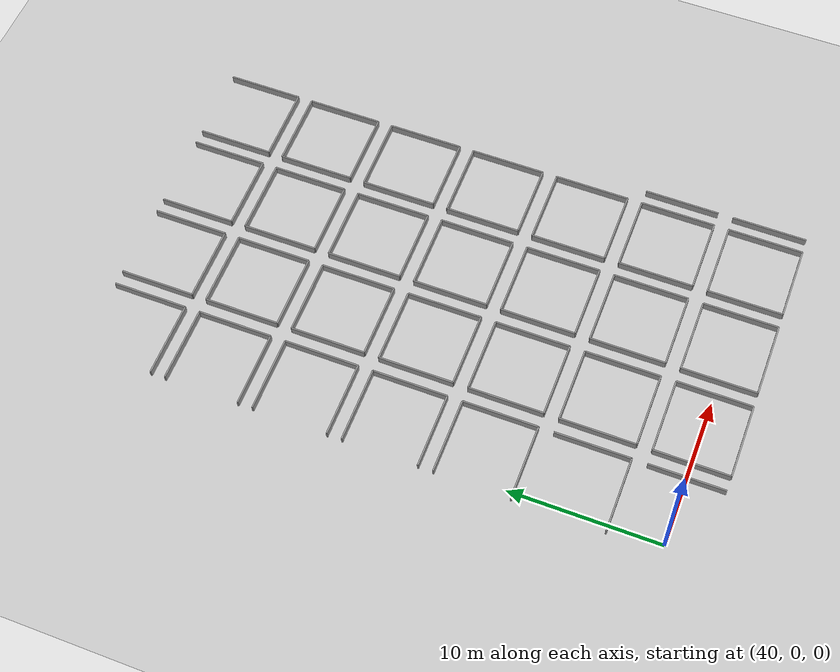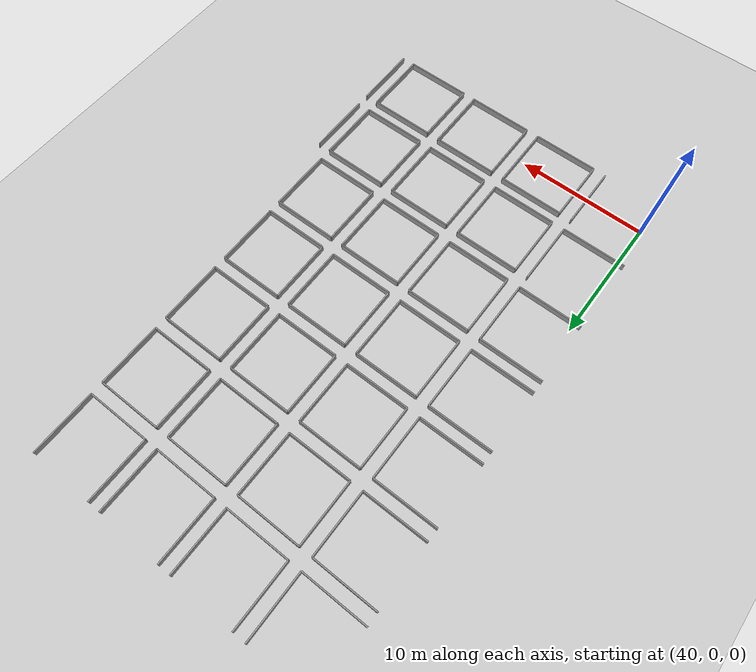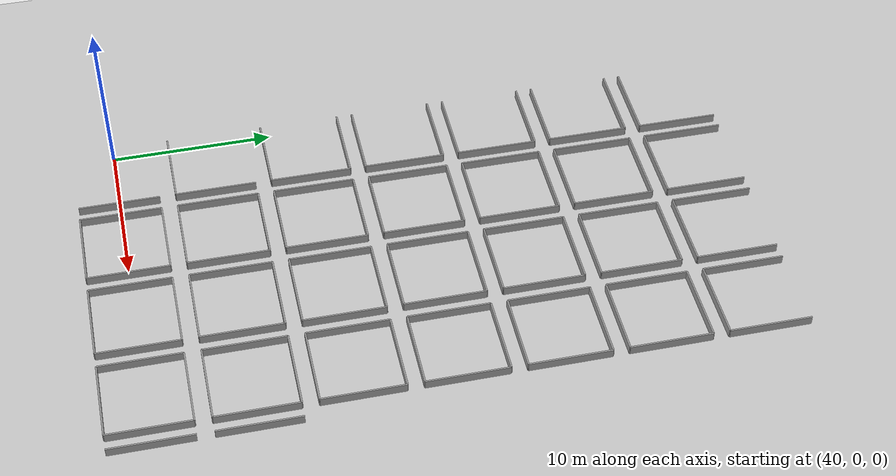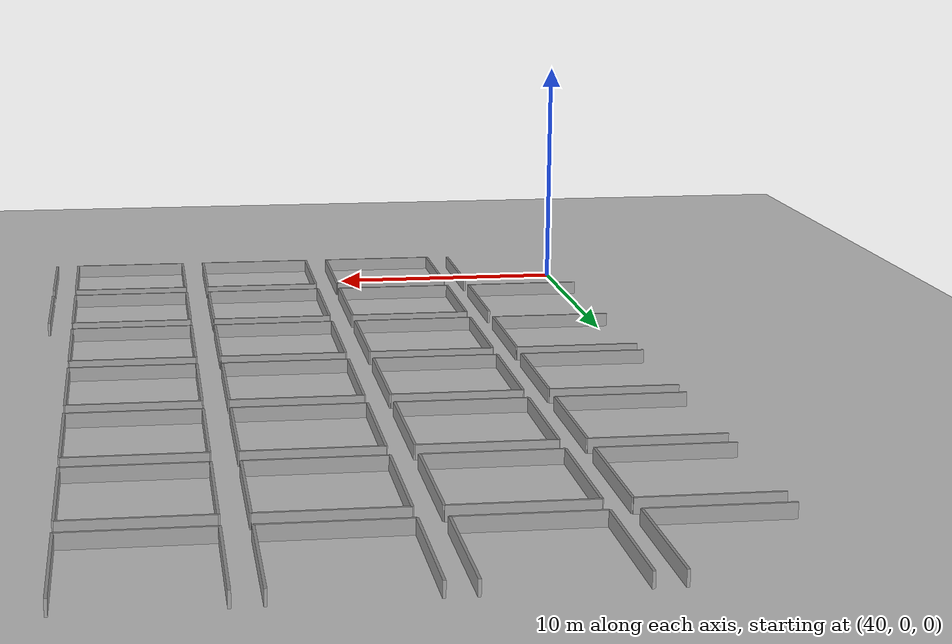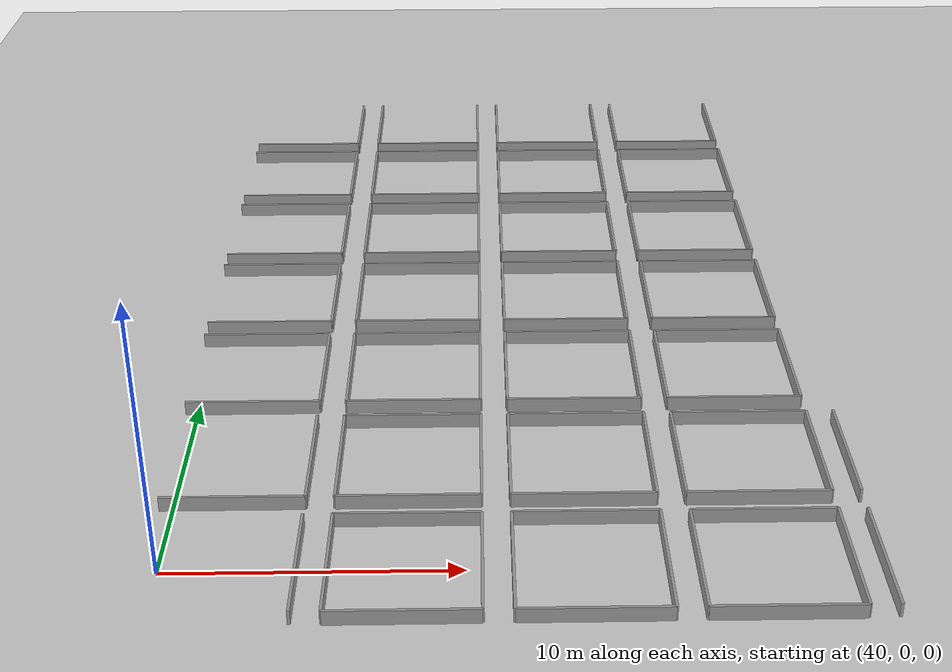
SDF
<sdf version="1.7">
 <world name="default">
  <include><uri>model://sun</uri></include>
  <model name="ground_plane">
   <static>true</static>
   <link name="link">
    <collision name="collision">
     <geometry><plane><normal>0 0 1</normal><size>100 100</size></plane></geometry>
    </collision>
    <visual name="visual">
     <geometry><plane><normal>0 0 1</normal><size>100 100</size></plane></geometry>
     <material>
      <script><uri>file://media/materials/scripts/gazebo.material</uri><name>Gazebo/Grey</name></script>
     </material>
    </visual>
   </link>
  </model>
  <model name="wall_7_east">
   <static>true</static>
   <pose>44.5 0 0 0 0 1.5707</pose>
   <link name="link">
    <collision name="collision"><geometry><box><size>5 0.1 1</size></box></geometry></collision>
    <visual name="visual">
     <geometry><box><size>5 0.1 1</size></box></geometry>
     <material>
      <script><uri>file://media/materials/scripts/gazebo.material</uri><name>Gazebo/Grey</name></script>
     </material>
    </visual>
   </link>
  </model>
  <model name="wall_8_north">
   <static>true</static>
   <pose>48 2.5 0 0 0 0</pose>
   <link name="link">
    <collision name="collision"><geometry><box><size>5 0.1 1</size></box></geometry></collision>
    <visual name="visual">
     <geometry><box><size>5 0.1 1</size></box></geometry>
     <material>
      <script><uri>file://media/materials/scripts/gazebo.material</uri><name>Gazebo/Grey</name></script>
     </material>
    </visual>
   </link>
  </model>
  <model name="wall_8_south">
   <static>true</static>
   <pose>48 -2.5 0 0 0 0</pose>
   <link name="link">
    <collision name="collision"><geometry><box><size>5 0.1 1</size></box></geometry></collision>
    <visual name="visual">
     <geometry><box><size>5 0.1 1</size></box></geometry>
     <material>
      <script><uri>file://media/materials/scripts/gazebo.material</uri><name>Gazebo/Grey</name></script>
     </material>
    </visual>
   </link>
  </model>
  <model name="wall_8_east">
   <static>true</static>
   <pose>50.5 0 0 0 0 1.5707</pose>
   <link name="link">
    <collision name="collision"><geometry><box><size>5 0.1 1</size></box></geometry></collision>
    <visual name="visual">
     <geometry><box><size>5 0.1 1</size></box></geometry>
     <material>
      <script><uri>file://media/materials/scripts/gazebo.material</uri><name>Gazebo/Grey</name></script>
     </material>
    </visual>
   </link>
  </model>
  <model name="wall_8_west">
   <static>true</static>
   <pose>45.5 0 0 0 0 1.5707</pose>
   <link name="link">
    <collision name="collision"><geometry><box><size>5 0.1 1</size></box></geometry></collision>
    <visual name="visual">
     <geometry><box><size>5 0.1 1</size></box></geometry>
     <material>
      <script><uri>file://media/materials/scripts/gazebo.material</uri><name>Gazebo/Grey</name></script>
     </material>
    </visual>
   </link>
  </model>
  <model name="wall_9_north">
   <static>true</static>
   <pose>54 2.5 0 0 0 0</pose>
   <link name="link">
    <collision name="collision"><geometry><box><size>5 0.1 1</size></box></geometry></collision>
    <visual name="visual">
     <geometry><box><size>5 0.1 1</size></box></geometry>
     <material>
      <script><uri>file://media/materials/scripts/gazebo.material</uri><name>Gazebo/Grey</name></script>
     </material>
    </visual>
   </link>
  </model>
  <model name="wall_9_south">
   <static>true</static>
   <pose>54 -2.5 0 0 0 0</pose>
   <link name="link">
    <collision name="collision"><geometry><box><size>5 0.1 1</size></box></geometry></collision>
    <visual name="visual">
     <geometry><box><size>5 0.1 1</size></box></geometry>
     <material>
      <script><uri>file://media/materials/scripts/gazebo.material</uri><name>Gazebo/Grey</name></script>
     </material>
    </visual>
   </link>
  </model>
  <model name="wall_9_east">
   <static>true</static>
   <pose>56.5 0 0 0 0 1.5707</pose>
   <link name="link">
    <collision name="collision"><geometry><box><size>5 0.1 1</size></box></geometry></collision>
    <visual name="visual">
     <geometry><box><size>5 0.1 1</size></box></geometry>
     <material>
      <script><uri>file://media/materials/scripts/gazebo.material</uri><name>Gazebo/Grey</name></script>
     </material>
    </visual>
   </link>
  </model>
  <model name="wall_9_west">
   <static>true</static>
   <pose>51.5 0 0 0 0 1.5707</pose>
   <link name="link">
    <collision name="collision"><geometry><box><size>5 0.1 1</size></box></geometry></collision>
    <visual name="visual">
     <geometry><box><size>5 0.1 1</size></box></geometry>
     <material>
      <script><uri>file://media/materials/scripts/gazebo.material</uri><name>Gazebo/Grey</name></script>
     </material>
    </visual>
   </link>
  </model>
  <model name="wall_10_north">
   <static>true</static>
   <pose>60 2.5 0 0 0 0</pose>
   <link name="link">
    <collision name="collision"><geometry><box><size>5 0.1 1</size></box></geometry></collision>
    <visual name="visual">
     <geometry><box><size>5 0.1 1</size></box></geometry>
     <material>
      <script><uri>file://media/materials/scripts/gazebo.material</uri><name>Gazebo/Grey</name></script>
     </material>
    </visual>
   </link>
  </model>
  <model name="wall_10_south">
   <static>true</static>
   <pose>60 -2.5 0 0 0 0</pose>
   <link name="link">
    <collision name="collision"><geometry><box><size>5 0.1 1</size></box></geometry></collision>
    <visual name="visual">
     <geometry><box><size>5 0.1 1</size></box></geometry>
     <material>
      <script><uri>file://media/materials/scripts/gazebo.material</uri><name>Gazebo/Grey</name></script>
     </material>
    </visual>
   </link>
  </model>
  <model name="wall_10_east">
   <static>true</static>
   <pose>62.5 0 0 0 0 1.5707</pose>
   <link name="link">
    <collision name="collision"><geometry><box><size>5 0.1 1</size></box></geometry></collision>
    <visual name="visual">
     <geometry><box><size>5 0.1 1</size></box></geometry>
     <material>
      <script><uri>file://media/materials/scripts/gazebo.material</uri><name>Gazebo/Grey</name></script>
     </material>
    </visual>
   </link>
  </model>
  <model name="wall_10_west">
   <static>true</static>
   <pose>57.5 0 0 0 0 1.5707</pose>
   <link name="link">
    <collision name="collision"><geometry><box><size>5 0.1 1</size></box></geometry></collision>
    <visual name="visual">
     <geometry><box><size>5 0.1 1</size></box></geometry>
     <material>
      <script><uri>file://media/materials/scripts/gazebo.material</uri><name>Gazebo/Grey</name></script>
     </material>
    </visual>
   </link>
  </model>
  <model name="wall_11_west">
   <static>true</static>
   <pose>63.5 0 0 0 0 1.5707</pose>
   <link name="link">
    <collision name="collision"><geometry><box><size>5 0.1 1</size></box></geometry></collision>
    <visual name="visual">
     <geometry><box><size>5 0.1 1</size></box></geometry>
     <material>
      <script><uri>file://media/materials/scripts/gazebo.material</uri><name>Gazebo/Grey</name></script>
     </material>
    </visual>
   </link>
  </model>
  <model name="wall_22_south">
   <static>true</static>
   <pose>42 3.5 0 0 0 0</pose>
   <link name="link">
    <collision name="collision"><geometry><box><size>5 0.1 1</size></box></geometry></collision>
    <visual name="visual">
     <geometry><box><size>5 0.1 1</size></box></geometry>
     <material>
      <script><uri>file://media/materials/scripts/gazebo.material</uri><name>Gazebo/Grey</name></script>
     </material>
    </visual>
   </link>
  </model>
  <model name="wall_22_east">
   <static>true</static>
   <pose>44.5 6 0 0 0 1.5707</pose>
   <link name="link">
    <collision name="collision"><geometry><box><size>5 0.1 1</size></box></geometry></collision>
    <visual name="visual">
     <geometry><box><size>5 0.1 1</size></box></geometry>
     <material>
      <script><uri>file://media/materials/scripts/gazebo.material</uri><name>Gazebo/Grey</name></script>
     </material>
    </visual>
   </link>
  </model>
  <model name="wall_23_north">
   <static>true</static>
   <pose>48 8.5 0 0 0 0</pose>
   <link name="link">
    <collision name="collision"><geometry><box><size>5 0.1 1</size></box></geometry></collision>
    <visual name="visual">
     <geometry><box><size>5 0.1 1</size></box></geometry>
     <material>
      <script><uri>file://media/materials/scripts/gazebo.material</uri><name>Gazebo/Grey</name></script>
     </material>
    </visual>
   </link>
  </model>
  <model name="wall_23_south">
   <static>true</static>
   <pose>48 3.5 0 0 0 0</pose>
   <link name="link">
    <collision name="collision"><geometry><box><size>5 0.1 1</size></box></geometry></collision>
    <visual name="visual">
     <geometry><box><size>5 0.1 1</size></box></geometry>
     <material>
      <script><uri>file://media/materials/scripts/gazebo.material</uri><name>Gazebo/Grey</name></script>
     </material>
    </visual>
   </link>
  </model>
  <model name="wall_23_east">
   <static>true</static>
   <pose>50.5 6 0 0 0 1.5707</pose>
   <link name="link">
    <collision name="collision"><geometry><box><size>5 0.1 1</size></box></geometry></collision>
    <visual name="visual">
     <geometry><box><size>5 0.1 1</size></box></geometry>
     <material>
      <script><uri>file://media/materials/scripts/gazebo.material</uri><name>Gazebo/Grey</name></script>
     </material>
    </visual>
   </link>
  </model>
  <model name="wall_23_west">
   <static>true</static>
   <pose>45.5 6 0 0 0 1.5707</pose>
   <link name="link">
    <collision name="collision"><geometry><box><size>5 0.1 1</size></box></geometry></collision>
    <visual name="visual">
     <geometry><box><size>5 0.1 1</size></box></geometry>
     <material>
      <script><uri>file://media/materials/scripts/gazebo.material</uri><name>Gazebo/Grey</name></script>
     </material>
    </visual>
   </link>
  </model>
  <model name="wall_24_north">
   <static>true</static>
   <pose>54 8.5 0 0 0 0</pose>
   <link name="link">
    <collision name="collision"><geometry><box><size>5 0.1 1</size></box></geometry></collision>
    <visual name="visual">
     <geometry><box><size>5 0.1 1</size></box></geometry>
     <material>
      <script><uri>file://media/materials/scripts/gazebo.material</uri><name>Gazebo/Grey</name></script>
     </material>
    </visual>
   </link>
  </model>
  <model name="wall_24_south">
   <static>true</static>
   <pose>54 3.5 0 0 0 0</pose>
   <link name="link">
    <collision name="collision"><geometry><box><size>5 0.1 1</size></box></geometry></collision>
    <visual name="visual">
     <geometry><box><size>5 0.1 1</size></box></geometry>
     <material>
      <script><uri>file://media/materials/scripts/gazebo.material</uri><name>Gazebo/Grey</name></script>
     </material>
    </visual>
   </link>
  </model>
  <model name="wall_24_east">
   <static>true</static>
   <pose>56.5 6 0 0 0 1.5707</pose>
   <link name="link">
    <collision name="collision"><geometry><box><size>5 0.1 1</size></box></geometry></collision>
    <visual name="visual">
     <geometry><box><size>5 0.1 1</size></box></geometry>
     <material>
      <script><uri>file://media/materials/scripts/gazebo.material</uri><name>Gazebo/Grey</name></script>
     </material>
    </visual>
   </link>
  </model>
  <model name="wall_24_west">
   <static>true</static>
   <pose>51.5 6 0 0 0 1.5707</pose>
   <link name="link">
    <collision name="collision"><geometry><box><size>5 0.1 1</size></box></geometry></collision>
    <visual name="visual">
     <geometry><box><size>5 0.1 1</size></box></geometry>
     <material>
      <script><uri>file://media/materials/scripts/gazebo.material</uri><name>Gazebo/Grey</name></script>
     </material>
    </visual>
   </link>
  </model>
  <model name="wall_25_north">
   <static>true</static>
   <pose>60 8.5 0 0 0 0</pose>
   <link name="link">
    <collision name="collision"><geometry><box><size>5 0.1 1</size></box></geometry></collision>
    <visual name="visual">
     <geometry><box><size>5 0.1 1</size></box></geometry>
     <material>
      <script><uri>file://media/materials/scripts/gazebo.material</uri><name>Gazebo/Grey</name></script>
     </material>
    </visual>
   </link>
  </model>
  <model name="wall_25_south">
   <static>true</static>
   <pose>60 3.5 0 0 0 0</pose>
   <link name="link">
    <collision name="collision"><geometry><box><size>5 0.1 1</size></box></geometry></collision>
    <visual name="visual">
     <geometry><box><size>5 0.1 1</size></box></geometry>
     <material>
      <script><uri>file://media/materials/scripts/gazebo.material</uri><name>Gazebo/Grey</name></script>
     </material>
    </visual>
   </link>
  </model>
  <model name="wall_25_east">
   <static>true</static>
   <pose>62.5 6 0 0 0 1.5707</pose>
   <link name="link">
    <collision name="collision"><geometry><box><size>5 0.1 1</size></box></geometry></collision>
    <visual name="visual">
     <geometry><box><size>5 0.1 1</size></box></geometry>
     <material>
      <script><uri>file://media/materials/scripts/gazebo.material</uri><name>Gazebo/Grey</name></script>
     </material>
    </visual>
   </link>
  </model>
  <model name="wall_25_west">
   <static>true</static>
   <pose>57.5 6 0 0 0 1.5707</pose>
   <link name="link">
    <collision name="collision"><geometry><box><size>5 0.1 1</size></box></geometry></collision>
    <visual name="visual">
     <geometry><box><size>5 0.1 1</size></box></geometry>
     <material>
      <script><uri>file://media/materials/scripts/gazebo.material</uri><name>Gazebo/Grey</name></script>
     </material>
    </visual>
   </link>
  </model>
  <model name="wall_26_west">
   <static>true</static>
   <pose>63.5 6 0 0 0 1.5707</pose>
   <link name="link">
    <collision name="collision"><geometry><box><size>5 0.1 1</size></box></geometry></collision>
    <visual name="visual">
     <geometry><box><size>5 0.1 1</size></box></geometry>
     <material>
      <script><uri>file://media/materials/scripts/gazebo.material</uri><name>Gazebo/Grey</name></script>
     </material>
    </visual>
   </link>
  </model>
  <model name="wall_37_north">
   <static>true</static>
   <pose>42 14.5 0 0 0 0</pose>
   <link name="link">
    <collision name="collision"><geometry><box><size>5 0.1 1</size></box></geometry></collision>
    <visual name="visual">
     <geometry><box><size>5 0.1 1</size></box></geometry>
     <material>
      <script><uri>file://media/materials/scripts/gazebo.material</uri><name>Gazebo/Grey</name></script>
     </material>
    </visual>
   </link>
  </model>
  <model name="wall_37_south">
   <static>true</static>
   <pose>42 9.5 0 0 0 0</pose>
   <link name="link">
    <collision name="collision"><geometry><box><size>5 0.1 1</size></box></geometry></collision>
    <visual name="visual">
     <geometry><box><size>5 0.1 1</size></box></geometry>
     <material>
      <script><uri>file://media/materials/scripts/gazebo.material</uri><name>Gazebo/Grey</name></script>
     </material>
    </visual>
   </link>
  </model>
  <model name="wall_37_east">
   <static>true</static>
   <pose>44.5 12 0 0 0 1.5707</pose>
   <link name="link">
    <collision name="collision"><geometry><box><size>5 0.1 1</size></box></geometry></collision>
    <visual name="visual">
     <geometry><box><size>5 0.1 1</size></box></geometry>
     <material>
      <script><uri>file://media/materials/scripts/gazebo.material</uri><name>Gazebo/Grey</name></script>
     </material>
    </visual>
   </link>
  </model>
  <model name="wall_38_north">
   <static>true</static>
   <pose>48 14.5 0 0 0 0</pose>
   <link name="link">
    <collision name="collision"><geometry><box><size>5 0.1 1</size></box></geometry></collision>
    <visual name="visual">
     <geometry><box><size>5 0.1 1</size></box></geometry>
     <material>
      <script><uri>file://media/materials/scripts/gazebo.material</uri><name>Gazebo/Grey</name></script>
     </material>
    </visual>
   </link>
  </model>
  <model name="wall_38_south">
   <static>true</static>
   <pose>48 9.5 0 0 0 0</pose>
   <link name="link">
    <collision name="collision"><geometry><box><size>5 0.1 1</size></box></geometry></collision>
    <visual name="visual">
     <geometry><box><size>5 0.1 1</size></box></geometry>
     <material>
      <script><uri>file://media/materials/scripts/gazebo.material</uri><name>Gazebo/Grey</name></script>
     </material>
    </visual>
   </link>
  </model>
  <model name="wall_38_east">
   <static>true</static>
   <pose>50.5 12 0 0 0 1.5707</pose>
   <link name="link">
    <collision name="collision"><geometry><box><size>5 0.1 1</size></box></geometry></collision>
    <visual name="visual">
     <geometry><box><size>5 0.1 1</size></box></geometry>
     <material>
      <script><uri>file://media/materials/scripts/gazebo.material</uri><name>Gazebo/Grey</name></script>
     </material>
    </visual>
   </link>
  </model>
  <model name="wall_38_west">
   <static>true</static>
   <pose>45.5 12 0 0 0 1.5707</pose>
   <link name="link">
    <collision name="collision"><geometry><box><size>5 0.1 1</size></box></geometry></collision>
    <visual name="visual">
     <geometry><box><size>5 0.1 1</size></box></geometry>
     <material>
      <script><uri>file://media/materials/scripts/gazebo.material</uri><name>Gazebo/Grey</name></script>
     </material>
    </visual>
   </link>
  </model>
  <model name="wall_39_north">
   <static>true</static>
   <pose>54 14.5 0 0 0 0</pose>
   <link name="link">
    <collision name="collision"><geometry><box><size>5 0.1 1</size></box></geometry></collision>
    <visual name="visual">
     <geometry><box><size>5 0.1 1</size></box></geometry>
     <material>
      <script><uri>file://media/materials/scripts/gazebo.material</uri><name>Gazebo/Grey</name></script>
     </material>
    </visual>
   </link>
  </model>
  <model name="wall_39_south">
   <static>true</static>
   <pose>54 9.5 0 0 0 0</pose>
   <link name="link">
    <collision name="collision"><geometry><box><size>5 0.1 1</size></box></geometry></collision>
    <visual name="visual">
     <geometry><box><size>5 0.1 1</size></box></geometry>
     <material>
      <script><uri>file://media/materials/scripts/gazebo.material</uri><name>Gazebo/Grey</name></script>
     </material>
    </visual>
   </link>
  </model>
  <model name="wall_39_east">
   <static>true</static>
   <pose>56.5 12 0 0 0 1.5707</pose>
   <link name="link">
    <collision name="collision"><geometry><box><size>5 0.1 1</size></box></geometry></collision>
    <visual name="visual">
     <geometry><box><size>5 0.1 1</size></box></geometry>
     <material>
      <script><uri>file://media/materials/scripts/gazebo.material</uri><name>Gazebo/Grey</name></script>
     </material>
    </visual>
   </link>
  </model>
  <model name="wall_39_west">
   <static>true</static>
   <pose>51.5 12 0 0 0 1.5707</pose>
   <link name="link">
    <collision name="collision"><geometry><box><size>5 0.1 1</size></box></geometry></collision>
    <visual name="visual">
     <geometry><box><size>5 0.1 1</size></box></geometry>
     <material>
      <script><uri>file://media/materials/scripts/gazebo.material</uri><name>Gazebo/Grey</name></script>
     </material>
    </visual>
   </link>
  </model>
  <model name="wall_40_north">
   <static>true</static>
   <pose>60 14.5 0 0 0 0</pose>
   <link name="link">
    <collision name="collision"><geometry><box><size>5 0.1 1</size></box></geometry></collision>
    <visual name="visual">
     <geometry><box><size>5 0.1 1</size></box></geometry>
     <material>
      <script><uri>file://media/materials/scripts/gazebo.material</uri><name>Gazebo/Grey</name></script>
     </material>
    </visual>
   </link>
  </model>
  <model name="wall_40_south">
   <static>true</static>
   <pose>60 9.5 0 0 0 0</pose>
   <link name="link">
    <collision name="collision"><geometry><box><size>5 0.1 1</size></box></geometry></collision>
    <visual name="visual">
     <geometry><box><size>5 0.1 1</size></box></geometry>
     <material>
      <script><uri>file://media/materials/scripts/gazebo.material</uri><name>Gazebo/Grey</name></script>
     </material>
    </visual>
   </link>
  </model>
  <model name="wall_40_east">
   <static>true</static>
   <pose>62.5 12 0 0 0 1.5707</pose>
   <link name="link">
    <collision name="collision"><geometry><box><size>5 0.1 1</size></box></geometry></collision>
    <visual name="visual">
     <geometry><box><size>5 0.1 1</size></box></geometry>
     <material>
      <script><uri>file://media/materials/scripts/gazebo.material</uri><name>Gazebo/Grey</name></script>
     </material>
    </visual>
   </link>
  </model>
  <model name="wall_40_west">
   <static>true</static>
   <pose>57.5 12 0 0 0 1.5707</pose>
   <link name="link">
    <collision name="collision"><geometry><box><size>5 0.1 1</size></box></geometry></collision>
    <visual name="visual">
     <geometry><box><size>5 0.1 1</size></box></geometry>
     <material>
      <script><uri>file://media/materials/scripts/gazebo.material</uri><name>Gazebo/Grey</name></script>
     </material>
    </visual>
   </link>
  </model>
  <model name="wall_52_north">
   <static>true</static>
   <pose>42 20.5 0 0 0 0</pose>
   <link name="link">
    <collision name="collision"><geometry><box><size>5 0.1 1</size></box></geometry></collision>
    <visual name="visual">
     <geometry><box><size>5 0.1 1</size></box></geometry>
     <material>
      <script><uri>file://media/materials/scripts/gazebo.material</uri><name>Gazebo/Grey</name></script>
     </material>
    </visual>
   </link>
  </model>
  <model name="wall_52_south">
   <static>true</static>
   <pose>42 15.5 0 0 0 0</pose>
   <link name="link">
    <collision name="collision"><geometry><box><size>5 0.1 1</size></box></geometry></collision>
    <visual name="visual">
     <geometry><box><size>5 0.1 1</size></box></geometry>
     <material>
      <script><uri>file://media/materials/scripts/gazebo.material</uri><name>Gazebo/Grey</name></script>
     </material>
    </visual>
   </link>
  </model>
  <model name="wall_52_east">
   <static>true</static>
   <pose>44.5 18 0 0 0 1.5707</pose>
   <link name="link">
    <collision name="collision"><geometry><box><size>5 0.1 1</size></box></geometry></collision>
    <visual name="visual">
     <geometry><box><size>5 0.1 1</size></box></geometry>
     <material>
      <script><uri>file://media/materials/scripts/gazebo.material</uri><name>Gazebo/Grey</name></script>
     </material>
    </visual>
   </link>
  </model>
  <model name="wall_53_north">
   <static>true</static>
   <pose>48 20.5 0 0 0 0</pose>
   <link name="link">
    <collision name="collision"><geometry><box><size>5 0.1 1</size></box></geometry></collision>
    <visual name="visual">
     <geometry><box><size>5 0.1 1</size></box></geometry>
     <material>
      <script><uri>file://media/materials/scripts/gazebo.material</uri><name>Gazebo/Grey</name></script>
     </material>
    </visual>
   </link>
  </model>
  <model name="wall_53_south">
   <static>true</static>
   <pose>48 15.5 0 0 0 0</pose>
   <link name="link">
    <collision name="collision"><geometry><box><size>5 0.1 1</size></box></geometry></collision>
    <visual name="visual">
     <geometry><box><size>5 0.1 1</size></box></geometry>
     <material>
      <script><uri>file://media/materials/scripts/gazebo.material</uri><name>Gazebo/Grey</name></script>
     </material>
    </visual>
   </link>
  </model>
  <model name="wall_53_east">
   <static>true</static>
   <pose>50.5 18 0 0 0 1.5707</pose>
   <link name="link">
    <collision name="collision"><geometry><box><size>5 0.1 1</size></box></geometry></collision>
    <visual name="visual">
     <geometry><box><size>5 0.1 1</size></box></geometry>
     <material>
      <script><uri>file://media/materials/scripts/gazebo.material</uri><name>Gazebo/Grey</name></script>
     </material>
    </visual>
   </link>
  </model>
  <model name="wall_53_west">
   <static>true</static>
   <pose>45.5 18 0 0 0 1.5707</pose>
   <link name="link">
    <collision name="collision"><geometry><box><size>5 0.1 1</size></box></geometry></collision>
    <visual name="visual">
     <geometry><box><size>5 0.1 1</size></box></geometry>
     <material>
      <script><uri>file://media/materials/scripts/gazebo.material</uri><name>Gazebo/Grey</name></script>
     </material>
    </visual>
   </link>
  </model>
  <model name="wall_54_north">
   <static>true</static>
   <pose>54 20.5 0 0 0 0</pose>
   <link name="link">
    <collision name="collision"><geometry><box><size>5 0.1 1</size></box></geometry></collision>
    <visual name="visual">
     <geometry><box><size>5 0.1 1</size></box></geometry>
     <material>
      <script><uri>file://media/materials/scripts/gazebo.material</uri><name>Gazebo/Grey</name></script>
     </material>
    </visual>
   </link>
  </model>
  <model name="wall_54_south">
   <static>true</static>
   <pose>54 15.5 0 0 0 0</pose>
   <link name="link">
    <collision name="collision"><geometry><box><size>5 0.1 1</size></box></geometry></collision>
    <visual name="visual">
     <geometry><box><size>5 0.1 1</size></box></geometry>
     <material>
      <script><uri>file://media/materials/scripts/gazebo.material</uri><name>Gazebo/Grey</name></script>
     </material>
    </visual>
   </link>
  </model>
  <model name="wall_54_east">
   <static>true</static>
   <pose>56.5 18 0 0 0 1.5707</pose>
   <link name="link">
    <collision name="collision"><geometry><box><size>5 0.1 1</size></box></geometry></collision>
    <visual name="visual">
     <geometry><box><size>5 0.1 1</size></box></geometry>
     <material>
      <script><uri>file://media/materials/scripts/gazebo.material</uri><name>Gazebo/Grey</name></script>
     </material>
    </visual>
   </link>
  </model>
  <model name="wall_54_west">
   <static>true</static>
   <pose>51.5 18 0 0 0 1.5707</pose>
   <link name="link">
    <collision name="collision"><geometry><box><size>5 0.1 1</size></box></geometry></collision>
    <visual name="visual">
     <geometry><box><size>5 0.1 1</size></box></geometry>
     <material>
      <script><uri>file://media/materials/scripts/gazebo.material</uri><name>Gazebo/Grey</name></script>
     </material>
    </visual>
   </link>
  </model>
  <model name="wall_55_north">
   <static>true</static>
   <pose>60 20.5 0 0 0 0</pose>
   <link name="link">
    <collision name="collision"><geometry><box><size>5 0.1 1</size></box></geometry></collision>
    <visual name="visual">
     <geometry><box><size>5 0.1 1</size></box></geometry>
     <material>
      <script><uri>file://media/materials/scripts/gazebo.material</uri><name>Gazebo/Grey</name></script>
     </material>
    </visual>
   </link>
  </model>
  <model name="wall_55_south">
   <static>true</static>
   <pose>60 15.5 0 0 0 0</pose>
   <link name="link">
    <collision name="collision"><geometry><box><size>5 0.1 1</size></box></geometry></collision>
    <visual name="visual">
     <geometry><box><size>5 0.1 1</size></box></geometry>
     <material>
      <script><uri>file://media/materials/scripts/gazebo.material</uri><name>Gazebo/Grey</name></script>
     </material>
    </visual>
   </link>
  </model>
  <model name="wall_55_east">
   <static>true</static>
   <pose>62.5 18 0 0 0 1.5707</pose>
   <link name="link">
    <collision name="collision"><geometry><box><size>5 0.1 1</size></box></geometry></collision>
    <visual name="visual">
     <geometry><box><size>5 0.1 1</size></box></geometry>
     <material>
      <script><uri>file://media/materials/scripts/gazebo.material</uri><name>Gazebo/Grey</name></script>
     </material>
    </visual>
   </link>
  </model>
  <model name="wall_55_west">
   <static>true</static>
   <pose>57.5 18 0 0 0 1.5707</pose>
   <link name="link">
    <collision name="collision"><geometry><box><size>5 0.1 1</size></box></geometry></collision>
    <visual name="visual">
     <geometry><box><size>5 0.1 1</size></box></geometry>
     <material>
      <script><uri>file://media/materials/scripts/gazebo.material</uri><name>Gazebo/Grey</name></script>
     </material>
    </visual>
   </link>
  </model>
  <model name="wall_67_north">
   <static>true</static>
   <pose>42 26.5 0 0 0 0</pose>
   <link name="link">
    <collision name="collision"><geometry><box><size>5 0.1 1</size></box></geometry></collision>
    <visual name="visual">
     <geometry><box><size>5 0.1 1</size></box></geometry>
     <material>
      <script><uri>file://media/materials/scripts/gazebo.material</uri><name>Gazebo/Grey</name></script>
     </material>
    </visual>
   </link>
  </model>
  <model name="wall_67_south">
   <static>true</static>
   <pose>42 21.5 0 0 0 0</pose>
   <link name="link">
    <collision name="collision"><geometry><box><size>5 0.1 1</size></box></geometry></collision>
    <visual name="visual">
     <geometry><box><size>5 0.1 1</size></box></geometry>
     <material>
      <script><uri>file://media/materials/scripts/gazebo.material</uri><name>Gazebo/Grey</name></script>
     </material>
    </visual>
   </link>
  </model>
  <model name="wall_67_east">
   <static>true</static>
   <pose>44.5 24 0 0 0 1.5707</pose>
   <link name="link">
    <collision name="collision"><geometry><box><size>5 0.1 1</size></box></geometry></collision>
    <visual name="visual">
     <geometry><box><size>5 0.1 1</size></box></geometry>
     <material>
      <script><uri>file://media/materials/scripts/gazebo.material</uri><name>Gazebo/Grey</name></script>
     </material>
    </visual>
   </link>
  </model>
  <model name="wall_68_north">
   <static>true</static>
   <pose>48 26.5 0 0 0 0</pose>
   <link name="link">
    <collision name="collision"><geometry><box><size>5 0.1 1</size></box></geometry></collision>
    <visual name="visual">
     <geometry><box><size>5 0.1 1</size></box></geometry>
     <material>
      <script><uri>file://media/materials/scripts/gazebo.material</uri><name>Gazebo/Grey</name></script>
     </material>
    </visual>
   </link>
  </model>
  <model name="wall_68_south">
   <static>true</static>
   <pose>48 21.5 0 0 0 0</pose>
   <link name="link">
    <collision name="collision"><geometry><box><size>5 0.1 1</size></box></geometry></collision>
    <visual name="visual">
     <geometry><box><size>5 0.1 1</size></box></geometry>
     <material>
      <script><uri>file://media/materials/scripts/gazebo.material</uri><name>Gazebo/Grey</name></script>
     </material>
    </visual>
   </link>
  </model>
  <model name="wall_68_east">
   <static>true</static>
   <pose>50.5 24 0 0 0 1.5707</pose>
   <link name="link">
    <collision name="collision"><geometry><box><size>5 0.1 1</size></box></geometry></collision>
    <visual name="visual">
     <geometry><box><size>5 0.1 1</size></box></geometry>
     <material>
      <script><uri>file://media/materials/scripts/gazebo.material</uri><name>Gazebo/Grey</name></script>
     </material>
    </visual>
   </link>
  </model>
  <model name="wall_68_west">
   <static>true</static>
   <pose>45.5 24 0 0 0 1.5707</pose>
   <link name="link">
    <collision name="collision"><geometry><box><size>5 0.1 1</size></box></geometry></collision>
    <visual name="visual">
     <geometry><box><size>5 0.1 1</size></box></geometry>
     <material>
      <script><uri>file://media/materials/scripts/gazebo.material</uri><name>Gazebo/Grey</name></script>
     </material>
    </visual>
   </link>
  </model>
  <model name="wall_69_north">
   <static>true</static>
   <pose>54 26.5 0 0 0 0</pose>
   <link name="link">
    <collision name="collision"><geometry><box><size>5 0.1 1</size></box></geometry></collision>
    <visual name="visual">
     <geometry><box><size>5 0.1 1</size></box></geometry>
     <material>
      <script><uri>file://media/materials/scripts/gazebo.material</uri><name>Gazebo/Grey</name></script>
     </material>
    </visual>
   </link>
  </model>
  <model name="wall_69_south">
   <static>true</static>
   <pose>54 21.5 0 0 0 0</pose>
   <link name="link">
    <collision name="collision"><geometry><box><size>5 0.1 1</size></box></geometry></collision>
    <visual name="visual">
     <geometry><box><size>5 0.1 1</size></box></geometry>
     <material>
      <script><uri>file://media/materials/scripts/gazebo.material</uri><name>Gazebo/Grey</name></script>
     </material>
    </visual>
   </link>
  </model>
  <model name="wall_69_east">
   <static>true</static>
   <pose>56.5 24 0 0 0 1.5707</pose>
   <link name="link">
    <collision name="collision"><geometry><box><size>5 0.1 1</size></box></geometry></collision>
    <visual name="visual">
     <geometry><box><size>5 0.1 1</size></box></geometry>
     <material>
      <script><uri>file://media/materials/scripts/gazebo.material</uri><name>Gazebo/Grey</name></script>
     </material>
    </visual>
   </link>
  </model>
  <model name="wall_69_west">
   <static>true</static>
   <pose>51.5 24 0 0 0 1.5707</pose>
   <link name="link">
    <collision name="collision"><geometry><box><size>5 0.1 1</size></box></geometry></collision>
    <visual name="visual">
     <geometry><box><size>5 0.1 1</size></box></geometry>
     <material>
      <script><uri>file://media/materials/scripts/gazebo.material</uri><name>Gazebo/Grey</name></script>
     </material>
    </visual>
   </link>
  </model>
  <model name="wall_70_north">
   <static>true</static>
   <pose>60 26.5 0 0 0 0</pose>
   <link name="link">
    <collision name="collision"><geometry><box><size>5 0.1 1</size></box></geometry></collision>
    <visual name="visual">
     <geometry><box><size>5 0.1 1</size></box></geometry>
     <material>
      <script><uri>file://media/materials/scripts/gazebo.material</uri><name>Gazebo/Grey</name></script>
     </material>
    </visual>
   </link>
  </model>
  <model name="wall_70_south">
   <static>true</static>
   <pose>60 21.5 0 0 0 0</pose>
   <link name="link">
    <collision name="collision"><geometry><box><size>5 0.1 1</size></box></geometry></collision>
    <visual name="visual">
     <geometry><box><size>5 0.1 1</size></box></geometry>
     <material>
      <script><uri>file://media/materials/scripts/gazebo.material</uri><name>Gazebo/Grey</name></script>
     </material>
    </visual>
   </link>
  </model>
  <model name="wall_70_east">
   <static>true</static>
   <pose>62.5 24 0 0 0 1.5707</pose>
   <link name="link">
    <collision name="collision"><geometry><box><size>5 0.1 1</size></box></geometry></collision>
    <visual name="visual">
     <geometry><box><size>5 0.1 1</size></box></geometry>
     <material>
      <script><uri>file://media/materials/scripts/gazebo.material</uri><name>Gazebo/Grey</name></script>
     </material>
    </visual>
   </link>
  </model>
  <model name="wall_70_west">
   <static>true</static>
   <pose>57.5 24 0 0 0 1.5707</pose>
   <link name="link">
    <collision name="collision"><geometry><box><size>5 0.1 1</size></box></geometry></collision>
    <visual name="visual">
     <geometry><box><size>5 0.1 1</size></box></geometry>
     <material>
      <script><uri>file://media/materials/scripts/gazebo.material</uri><name>Gazebo/Grey</name></script>
     </material>
    </visual>
   </link>
  </model>
  <model name="wall_82_north">
   <static>true</static>
   <pose>42 32.5 0 0 0 0</pose>
   <link name="link">
    <collision name="collision"><geometry><box><size>5 0.1 1</size></box></geometry></collision>
    <visual name="visual">
     <geometry><box><size>5 0.1 1</size></box></geometry>
     <material>
      <script><uri>file://media/materials/scripts/gazebo.material</uri><name>Gazebo/Grey</name></script>
     </material>
    </visual>
   </link>
  </model>
  <model name="wall_82_south">
   <static>true</static>
   <pose>42 27.5 0 0 0 0</pose>
   <link name="link">
    <collision name="collision"><geometry><box><size>5 0.1 1</size></box></geometry></collision>
    <visual name="visual">
     <geometry><box><size>5 0.1 1</size></box></geometry>
     <material>
      <script><uri>file://media/materials/scripts/gazebo.material</uri><name>Gazebo/Grey</name></script>
     </material>
    </visual>
   </link>
  </model>
  <model name="wall_82_east">
   <static>true</static>
   <pose>44.5 30 0 0 0 1.5707</pose>
   <link name="link">
    <collision name="collision"><geometry><box><size>5 0.1 1</size></box></geometry></collision>
    <visual name="visual">
     <geometry><box><size>5 0.1 1</size></box></geometry>
     <material>
      <script><uri>file://media/materials/scripts/gazebo.material</uri><name>Gazebo/Grey</name></script>
     </material>
    </visual>
   </link>
  </model>
  <model name="wall_83_north">
   <static>true</static>
   <pose>48 32.5 0 0 0 0</pose>
   <link name="link">
    <collision name="collision"><geometry><box><size>5 0.1 1</size></box></geometry></collision>
    <visual name="visual">
     <geometry><box><size>5 0.1 1</size></box></geometry>
     <material>
      <script><uri>file://media/materials/scripts/gazebo.material</uri><name>Gazebo/Grey</name></script>
     </material>
    </visual>
   </link>
  </model>
  <model name="wall_83_south">
   <static>true</static>
   <pose>48 27.5 0 0 0 0</pose>
   <link name="link">
    <collision name="collision"><geometry><box><size>5 0.1 1</size></box></geometry></collision>
    <visual name="visual">
     <geometry><box><size>5 0.1 1</size></box></geometry>
     <material>
      <script><uri>file://media/materials/scripts/gazebo.material</uri><name>Gazebo/Grey</name></script>
     </material>
    </visual>
   </link>
  </model>
  <model name="wall_83_east">
   <static>true</static>
   <pose>50.5 30 0 0 0 1.5707</pose>
   <link name="link">
    <collision name="collision"><geometry><box><size>5 0.1 1</size></box></geometry></collision>
    <visual name="visual">
     <geometry><box><size>5 0.1 1</size></box></geometry>
     <material>
      <script><uri>file://media/materials/scripts/gazebo.material</uri><name>Gazebo/Grey</name></script>
     </material>
    </visual>
   </link>
  </model>
  <model name="wall_83_west">
   <static>true</static>
   <pose>45.5 30 0 0 0 1.5707</pose>
   <link name="link">
    <collision name="collision"><geometry><box><size>5 0.1 1</size></box></geometry></collision>
    <visual name="visual">
     <geometry><box><size>5 0.1 1</size></box></geometry>
     <material>
      <script><uri>file://media/materials/scripts/gazebo.material</uri><name>Gazebo/Grey</name></script>
     </material>
    </visual>
   </link>
  </model>
  <model name="wall_84_north">
   <static>true</static>
   <pose>54 32.5 0 0 0 0</pose>
   <link name="link">
    <collision name="collision"><geometry><box><size>5 0.1 1</size></box></geometry></collision>
    <visual name="visual">
     <geometry><box><size>5 0.1 1</size></box></geometry>
     <material>
      <script><uri>file://media/materials/scripts/gazebo.material</uri><name>Gazebo/Grey</name></script>
     </material>
    </visual>
   </link>
  </model>
  <model name="wall_84_south">
   <static>true</static>
   <pose>54 27.5 0 0 0 0</pose>
   <link name="link">
    <collision name="collision"><geometry><box><size>5 0.1 1</size></box></geometry></collision>
    <visual name="visual">
     <geometry><box><size>5 0.1 1</size></box></geometry>
     <material>
      <script><uri>file://media/materials/scripts/gazebo.material</uri><name>Gazebo/Grey</name></script>
     </material>
    </visual>
   </link>
  </model>
  <model name="wall_84_east">
   <static>true</static>
   <pose>56.5 30 0 0 0 1.5707</pose>
   <link name="link">
    <collision name="collision"><geometry><box><size>5 0.1 1</size></box></geometry></collision>
    <visual name="visual">
     <geometry><box><size>5 0.1 1</size></box></geometry>
     <material>
      <script><uri>file://media/materials/scripts/gazebo.material</uri><name>Gazebo/Grey</name></script>
     </material>
    </visual>
   </link>
  </model>
  <model name="wall_84_west">
   <static>true</static>
   <pose>51.5 30 0 0 0 1.5707</pose>
   <link name="link">
    <collision name="collision"><geometry><box><size>5 0.1 1</size></box></geometry></collision>
    <visual name="visual">
     <geometry><box><size>5 0.1 1</size></box></geometry>
     <material>
      <script><uri>file://media/materials/scripts/gazebo.material</uri><name>Gazebo/Grey</name></script>
     </material>
    </visual>
   </link>
  </model>
  <model name="wall_85_north">
   <static>true</static>
   <pose>60 32.5 0 0 0 0</pose>
   <link name="link">
    <collision name="collision"><geometry><box><size>5 0.1 1</size></box></geometry></collision>
    <visual name="visual">
     <geometry><box><size>5 0.1 1</size></box></geometry>
     <material>
      <script><uri>file://media/materials/scripts/gazebo.material</uri><name>Gazebo/Grey</name></script>
     </material>
    </visual>
   </link>
  </model>
  <model name="wall_85_south">
   <static>true</static>
   <pose>60 27.5 0 0 0 0</pose>
   <link name="link">
    <collision name="collision"><geometry><box><size>5 0.1 1</size></box></geometry></collision>
    <visual name="visual">
     <geometry><box><size>5 0.1 1</size></box></geometry>
     <material>
      <script><uri>file://media/materials/scripts/gazebo.material</uri><name>Gazebo/Grey</name></script>
     </material>
    </visual>
   </link>
  </model>
  <model name="wall_85_east">
   <static>true</static>
   <pose>62.5 30 0 0 0 1.5707</pose>
   <link name="link">
    <collision name="collision"><geometry><box><size>5 0.1 1</size></box></geometry></collision>
    <visual name="visual">
     <geometry><box><size>5 0.1 1</size></box></geometry>
     <material>
      <script><uri>file://media/materials/scripts/gazebo.material</uri><name>Gazebo/Grey</name></script>
     </material>
    </visual>
   </link>
  </model>
  <model name="wall_85_west">
   <static>true</static>
   <pose>57.5 30 0 0 0 1.5707</pose>
   <link name="link">
    <collision name="collision"><geometry><box><size>5 0.1 1</size></box></geometry></collision>
    <visual name="visual">
     <geometry><box><size>5 0.1 1</size></box></geometry>
     <material>
      <script><uri>file://media/materials/scripts/gazebo.material</uri><name>Gazebo/Grey</name></script>
     </material>
    </visual>
   </link>
  </model>
  <model name="wall_97_south">
   <static>true</static>
   <pose>42 33.5 0 0 0 0</pose>
   <link name="link">
    <collision name="collision"><geometry><box><size>5 0.1 1</size></box></geometry></collision>
    <visual name="visual">
     <geometry><box><size>5 0.1 1</size></box></geometry>
     <material>
      <script><uri>file://media/materials/scripts/gazebo.material</uri><name>Gazebo/Grey</name></script>
     </material>
    </visual>
   </link>
  </model>
  <model name="wall_97_east">
   <static>true</static>
   <pose>44.5 36 0 0 0 1.5707</pose>
   <link name="link">
    <collision name="collision"><geometry><box><size>5 0.1 1</size></box></geometry></collision>
    <visual name="visual">
     <geometry><box><size>5 0.1 1</size></box></geometry>
     <material>
      <script><uri>file://media/materials/scripts/gazebo.material</uri><name>Gazebo/Grey</name></script>
     </material>
    </visual>
   </link>
  </model>
  <model name="wall_98_south">
   <static>true</static>
   <pose>48 33.5 0 0 0 0</pose>
   <link name="link">
    <collision name="collision"><geometry><box><size>5 0.1 1</size></box></geometry></collision>
    <visual name="visual">
     <geometry><box><size>5 0.1 1</size></box></geometry>
     <material>
      <script><uri>file://media/materials/scripts/gazebo.material</uri><name>Gazebo/Grey</name></script>
     </material>
    </visual>
   </link>
  </model>
  <model name="wall_98_east">
   <static>true</static>
   <pose>50.5 36 0 0 0 1.5707</pose>
   <link name="link">
    <collision name="collision"><geometry><box><size>5 0.1 1</size></box></geometry></collision>
    <visual name="visual">
     <geometry><box><size>5 0.1 1</size></box></geometry>
     <material>
      <script><uri>file://media/materials/scripts/gazebo.material</uri><name>Gazebo/Grey</name></script>
     </material>
    </visual>
   </link>
  </model>
  <model name="wall_98_west">
   <static>true</static>
   <pose>45.5 36 0 0 0 1.5707</pose>
   <link name="link">
    <collision name="collision"><geometry><box><size>5 0.1 1</size></box></geometry></collision>
    <visual name="visual">
     <geometry><box><size>5 0.1 1</size></box></geometry>
     <material>
      <script><uri>file://media/materials/scripts/gazebo.material</uri><name>Gazebo/Grey</name></script>
     </material>
    </visual>
   </link>
  </model>
  <model name="wall_99_south">
   <static>true</static>
   <pose>54 33.5 0 0 0 0</pose>
   <link name="link">
    <collision name="collision"><geometry><box><size>5 0.1 1</size></box></geometry></collision>
    <visual name="visual">
     <geometry><box><size>5 0.1 1</size></box></geometry>
     <material>
      <script><uri>file://media/materials/scripts/gazebo.material</uri><name>Gazebo/Grey</name></script>
     </material>
    </visual>
   </link>
  </model>
  <model name="wall_99_east">
   <static>true</static>
   <pose>56.5 36 0 0 0 1.5707</pose>
   <link name="link">
    <collision name="collision"><geometry><box><size>5 0.1 1</size></box></geometry></collision>
    <visual name="visual">
     <geometry><box><size>5 0.1 1</size></box></geometry>
     <material>
      <script><uri>file://media/materials/scripts/gazebo.material</uri><name>Gazebo/Grey</name></script>
     </material>
    </visual>
   </link>
  </model>
  <model name="wall_99_west">
   <static>true</static>
   <pose>51.5 36 0 0 0 1.5707</pose>
   <link name="link">
    <collision name="collision"><geometry><box><size>5 0.1 1</size></box></geometry></collision>
    <visual name="visual">
     <geometry><box><size>5 0.1 1</size></box></geometry>
     <material>
      <script><uri>file://media/materials/scripts/gazebo.material</uri><name>Gazebo/Grey</name></script>
     </material>
    </visual>
   </link>
  </model>
  <model name="wall_100_south">
   <static>true</static>
   <pose>60 33.5 0 0 0 0</pose>
   <link name="link">
    <collision name="collision"><geometry><box><size>5 0.1 1</size></box></geometry></collision>
    <visual name="visual">
     <geometry><box><size>5 0.1 1</size></box></geometry>
     <material>
      <script><uri>file://media/materials/scripts/gazebo.material</uri><name>Gazebo/Grey</name></script>
     </material>
    </visual>
   </link>
  </model>
  <model name="wall_100_east">
   <static>true</static>
   <pose>62.5 36 0 0 0 1.5707</pose>
   <link name="link">
    <collision name="collision"><geometry><box><size>5 0.1 1</size></box></geometry></collision>
    <visual name="visual">
     <geometry><box><size>5 0.1 1</size></box></geometry>
     <material>
      <script><uri>file://media/materials/scripts/gazebo.material</uri><name>Gazebo/Grey</name></script>
     </material>
    </visual>
   </link>
  </model>
  <model name="wall_100_west">
   <static>true</static>
   <pose>57.5 36 0 0 0 1.5707</pose>
   <link name="link">
    <collision name="collision"><geometry><box><size>5 0.1 1</size></box></geometry></collision>
    <visual name="visual">
     <geometry><box><size>5 0.1 1</size></box></geometry>
     <material>
      <script><uri>file://media/materials/scripts/gazebo.material</uri><name>Gazebo/Grey</name></script>
     </material>
    </visual>
   </link>
  </model>
 </world>
</sdf>
